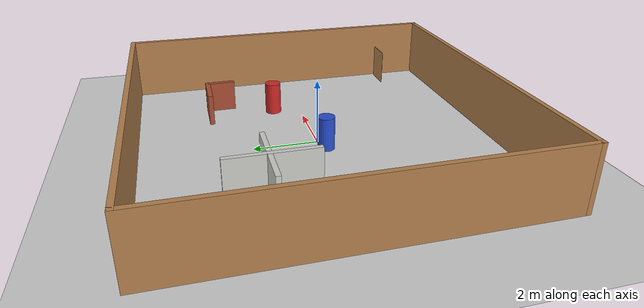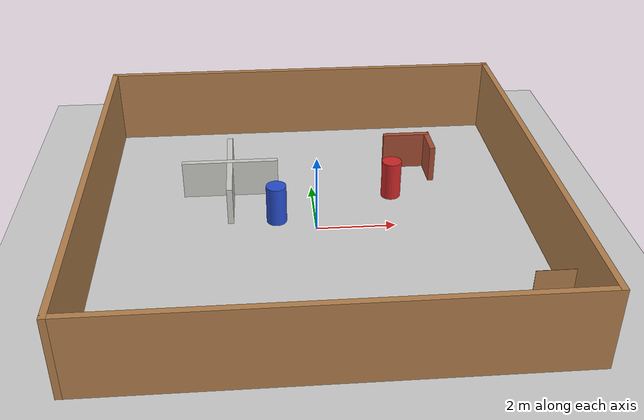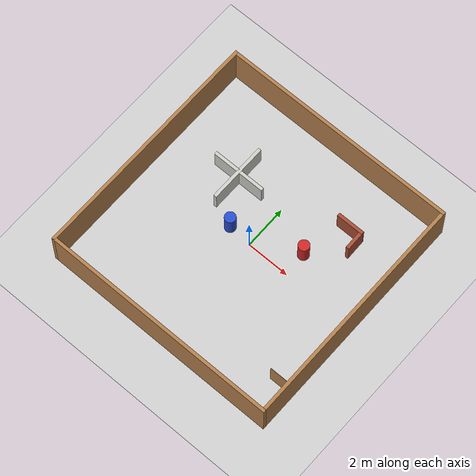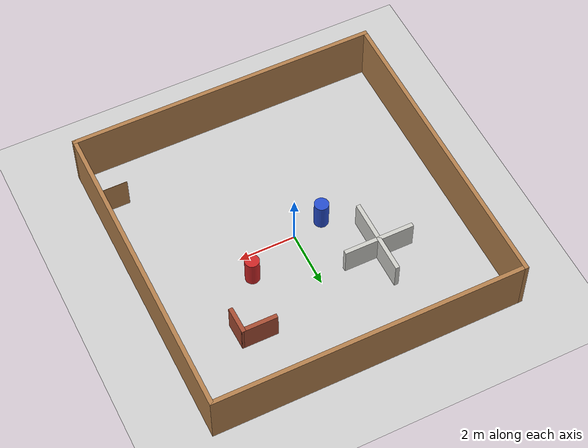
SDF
<sdf version="1.6">
 <world name="default">
  <light name="sun" type="directional">
   <pose>0 0 10 0 -0 0</pose>
   <diffuse>0.8 0.8 0.8 1</diffuse>
   <specular>0.1 0.1 0.1 1</specular>
   <attenuation>
    <range>1000</range>
    <constant>0.9</constant>
    <linear>0.01</linear>
    <quadratic>0.001</quadratic>
   </attenuation>
   <direction>-0.5 0.5 -1</direction>
  </light>
  <model name="dynamic_obstacle_path_1">
   <pose>2 1 0.8 0 0 0</pose>
   <link name="link">
    <inertial>
     <mass>7.0</mass>
     <inertia><ixx>8.4</ixx><ixy>0</ixy><ixz>0</ixz><iyy>8.4</iyy><iyz>0</iyz><izz>1.75</izz></inertia>
    </inertial>
    <collision name="collision">
     <geometry><cylinder><radius>0.25</radius><length>1.0</length></cylinder></geometry>
    </collision>
    <visual name="visual">
     <geometry><cylinder><radius>0.25</radius><length>1.0</length></cylinder></geometry>
     <material>
      <script><uri>file://media/materials/scripts/gazebo.material</uri><name>Gazebo/Red</name></script>
     </material>
    </visual>
    <kinematic>1</kinematic>
    <gravity>0</gravity>
   </link>
   <plugin name="obstacle_path_1" filename="/home/he/quad/navigation/DRL-robot-navigation/catkin_ws/src/multi_robot_scenario/plugins/libobstaclePathPlugin.so">
    <velocity>0.5</velocity>
    <orientation>true</orientation>
    <angular_velocity>0.2</angular_velocity>
    <loop>true</loop>
    <path>
     <waypoint>2 1 0.8</waypoint>
     <waypoint>2 1.5 0.8</waypoint>
     <waypoint>1 2 0.8</waypoint>
     <waypoint>0 2 0.8</waypoint>
     <waypoint>0 0 0.8</waypoint>
     <waypoint>1 -1 0.8</waypoint>
     <waypoint>2 0 0.8</waypoint>
    </path>
   </plugin>
   <static>0</static>
  </model>
  <model name="dynamic_obstacle_path_2">
   <pose>-1 0 0.8 0 0 0</pose>
   <link name="link">
    <inertial>
     <mass>7.0</mass>
     <inertia><ixx>8.4</ixx><ixy>0</ixy><ixz>0</ixz><iyy>8.4</iyy><iyz>0</iyz><izz>1.75</izz></inertia>
    </inertial>
    <collision name="collision">
     <geometry><cylinder><radius>0.25</radius><length>1.0</length></cylinder></geometry>
    </collision>
    <visual name="visual">
     <geometry><cylinder><radius>0.25</radius><length>1.0</length></cylinder></geometry>
     <material>
      <script><uri>file://media/materials/scripts/gazebo.material</uri><name>Gazebo/Blue</name></script>
     </material>
    </visual>
    <kinematic>1</kinematic>
    <gravity>0</gravity>
   </link>
   <plugin name="obstacle_path_2" filename="/home/he/quad/navigation/DRL-robot-navigation/catkin_ws/src/multi_robot_scenario/plugins/libobstaclePathPlugin.so">
    <velocity>0.5</velocity>
    <orientation>true</orientation>
    <angular_velocity>0.2</angular_velocity>
    <loop>true</loop>
    <path>
     <waypoint>-1 0 0.8</waypoint>
     <waypoint>-2 -0.5 0.8</waypoint>
     <waypoint>-1.5 -1 0.8</waypoint>
     <waypoint>0 -2 0.8</waypoint>
     <waypoint>1 -2 0.8</waypoint>
     <waypoint>2 -1 0.8</waypoint>
     <waypoint>1 -1 0.8</waypoint>
    </path>
   </plugin>
   <static>0</static>
  </model>
  <model name="ground_plane">
   <static>1</static>
   <link name="link">
    <collision name="collision">
     <geometry><plane><normal>0 0 1</normal><size>100 100</size></plane></geometry>
     <surface><friction><ode><mu>100</mu><mu2>50</mu2></ode></friction></surface>
    </collision>
    <visual name="visual">
     <cast_shadows>0</cast_shadows>
     <geometry><plane><normal>0 0 1</normal><size>100 100</size></plane></geometry>
     <material>
      <script><uri>file://media/materials/scripts/gazebo.material</uri><name>Gazebo/Grey</name></script>
     </material>
    </visual>
   </link>
  </model>
  <gravity>0 0 -9.8</gravity>
  <magnetic_field>6e-06 2.3e-05 -4.2e-05</magnetic_field>
  <atmosphere type="adiabatic"/>
  <physics name="default_physics" default="0" type="ode">
   <max_step_size>0.001</max_step_size>
   <real_time_factor>1</real_time_factor>
   <real_time_update_rate>1000</real_time_update_rate>
  </physics>
  <scene><ambient>0.4 0.4 0.4 1</ambient><background>0.7 0.7 0.7 1</background><shadows>1</shadows></scene>
  <spherical_coordinates>
   <surface_model>EARTH_WGS84</surface_model>
   <latitude_deg>0</latitude_deg>
   <longitude_deg>0</longitude_deg>
   <elevation>0</elevation>
   <heading_deg>0</heading_deg>
  </spherical_coordinates>
  <model name="box">
   <link name="Wall_11">
    <pose>-2.152 1.857 0 0 -0 0</pose>
    <visual name="Wall_11_Visual">
     <pose>0 0 0.5 0 -0 0</pose>
     <geometry><box><size>2.5 0.15 1</size></box></geometry>
     <material>
      <script><uri>file://media/materials/scripts/gazebo.material</uri><name>Gazebo/CeilingTiled</name></script>
     </material>
    </visual>
    <collision name="Wall_11_Collision">
     <pose>0 0 0.5 0 -0 0</pose>
     <geometry><box><size>2.5 0.15 1</size></box></geometry>
    </collision>
   </link>
   <link name="Wall_13">
    <pose>-2.155 1.764 0 0 0 -1.5708</pose>
    <visual name="Wall_13_Visual">
     <pose>0 0 0.5 0 -0 0</pose>
     <geometry><box><size>2.75 0.15 1</size></box></geometry>
     <material>
      <script><uri>file://media/materials/scripts/gazebo.material</uri><name>Gazebo/CeilingTiled</name></script>
     </material>
    </visual>
    <collision name="Wall_13_Collision">
     <pose>0 0 0.5 0 -0 0</pose>
     <geometry><box><size>2.75 0.15 1</size></box></geometry>
    </collision>
   </link>
   <link name="Wall_15">
    <pose>2.724 3.029 0 0 -0 0</pose>
    <visual name="Wall_15_Visual">
     <pose>0 0 0.5 0 -0 0</pose>
     <geometry><box><size>1.2678 0.15 1</size></box></geometry>
     <material>
      <script><uri>file://media/materials/scripts/gazebo.material</uri><name>Gazebo/Bricks</name></script>
     </material>
    </visual>
    <collision name="Wall_15_Collision">
     <pose>0 0 0.5 0 -0 0</pose>
     <geometry><box><size>1.2678 0.15 1</size></box></geometry>
    </collision>
   </link>
   <link name="Wall_16">
    <pose>3.2915 2.6215 0 0 0 -1.54994</pose>
    <visual name="Wall_16_Visual">
     <pose>0 0 0.5 0 -0 0</pose>
     <geometry><box><size>0.965005 0.15 1</size></box></geometry>
     <material>
      <script><uri>file://media/materials/scripts/gazebo.material</uri><name>Gazebo/Bricks</name></script>
     </material>
    </visual>
    <collision name="Wall_16_Collision">
     <pose>0 0 0.5 0 -0 0</pose>
     <geometry><box><size>0.965005 0.15 1</size></box></geometry>
    </collision>
   </link>
   <link name="Wall_6">
    <pose>0 5.425 0 0 -0 0</pose>
    <visual name="Wall_6_Visual">
     <pose>0 0 1 0 -0 0</pose>
     <geometry><box><size>11 0.15 2</size></box></geometry>
     <material>
      <script><uri>file://media/materials/scripts/gazebo.material</uri><name>Gazebo/Wood</name></script>
     </material>
    </visual>
    <collision name="Wall_6_Collision">
     <pose>0 0 1 0 -0 0</pose>
     <geometry><box><size>11 0.15 2</size></box></geometry>
    </collision>
   </link>
   <link name="Wall_7">
    <pose>5.425 0 0 0 0 -1.5708</pose>
    <visual name="Wall_7_Visual">
     <pose>0 0 1 0 -0 0</pose>
     <geometry><box><size>11 0.15 2</size></box></geometry>
     <material>
      <script><uri>file://media/materials/scripts/gazebo.material</uri><name>Gazebo/Wood</name></script>
     </material>
    </visual>
    <collision name="Wall_7_Collision">
     <pose>0 0 1 0 -0 0</pose>
     <geometry><box><size>11 0.15 2</size></box></geometry>
    </collision>
   </link>
   <link name="Wall_8">
    <pose>0 -5.425 0 0 -0 3.14159</pose>
    <visual name="Wall_8_Visual">
     <pose>0 0 1 0 -0 0</pose>
     <geometry><box><size>11 0.15 2</size></box></geometry>
     <material>
      <script><uri>file://media/materials/scripts/gazebo.material</uri><name>Gazebo/Wood</name></script>
     </material>
    </visual>
    <collision name="Wall_8_Collision">
     <pose>0 0 1 0 -0 0</pose>
     <geometry><box><size>11 0.15 2</size></box></geometry>
    </collision>
   </link>
   <link name="Wall_9">
    <pose>-5.425 0 0 0 -0 1.5708</pose>
    <visual name="Wall_9_Visual">
     <pose>0 0 1 0 -0 0</pose>
     <geometry><box><size>11 0.15 2</size></box></geometry>
     <material>
      <script><uri>file://media/materials/scripts/gazebo.material</uri><name>Gazebo/Wood</name></script>
     </material>
    </visual>
    <collision name="Wall_9_Collision">
     <pose>0 0 1 0 -0 0</pose>
     <geometry><box><size>11 0.15 2</size></box></geometry>
    </collision>
   </link>
   <static>1</static>
  </model>
  <model name="bookshelf">
   <static>1</static>
   <link name="link">
    <collision name="back">
     <pose>0 0.005 0.6 0 -0 0</pose>
     <geometry><box><size>0.9 0.01 1.2</size></box></geometry>
    </collision>
    <visual name="visual1">
     <pose>0 0.005 0.6 0 -0 0</pose>
     <geometry><box><size>0.9 0.01 1.2</size></box></geometry>
     <material>
      <script><uri>file://media/materials/scripts/gazebo.material</uri><name>Gazebo/Wood</name></script>
     </material>
    </visual>
   </link>
   <pose>4.78412 -3.73836 0 0 -0 0</pose>
  </model>
 </world>
</sdf>
